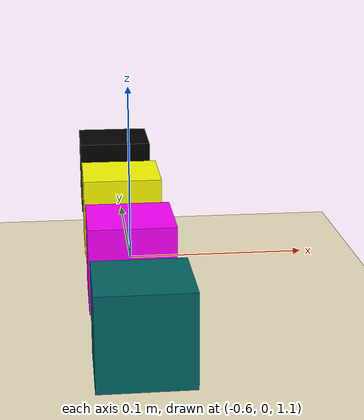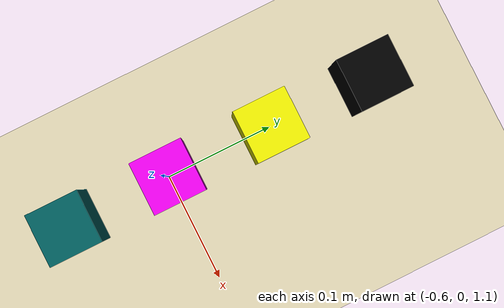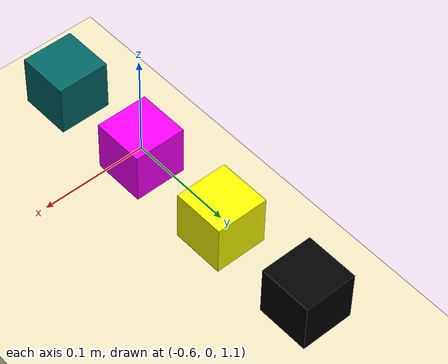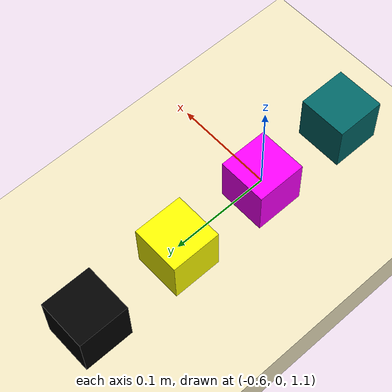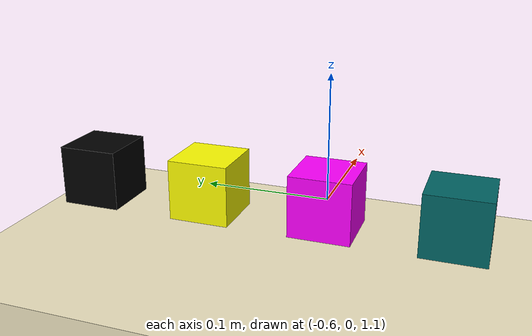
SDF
<sdf version="1.6">
  <world name="space_station_apriltag_world">
    <!-- Sim must be faster than the controller rate or there will be an error -->
    <physics name="sim_time" type="ignored">
      <max_step_size>0.005</max_step_size>
      <real_time_update_rate>0.005</real_time_update_rate>
      <real_time_factor>1.0</real_time_factor>
    </physics>
    <plugin
            filename="ignition-gazebo-physics-system"
            name="ignition::gazebo::systems::Physics">
    </plugin>
    <plugin
            filename="ignition-gazebo-user-commands-system"
            name="ignition::gazebo::systems::UserCommands">
    </plugin>
    <plugin
            filename="ignition-gazebo-scene-broadcaster-system"
            name="ignition::gazebo::systems::SceneBroadcaster">
    </plugin>
    <plugin
            filename="ignition-gazebo-contact-system"
            name="ignition::gazebo::systems::Contact">
    </plugin>
    <!-- FT Plugin -->
    <plugin
            filename="ignition-gazebo-forcetorque-system"
            name="ignition::gazebo::systems::ForceTorque">
    </plugin>

    <scene>
      <ambient>0.0 0.0 0.0 1.0</ambient>
      <shadows>0</shadows>
    </scene>

    <light type="directional" name="right-light">
      <cast_shadows>false</cast_shadows>
      <pose>0 0 100 0 0 0</pose>
      <diffuse>0.6 0.6 0.6 1</diffuse>
      <specular>0.2 0.2 0.2 1</specular>
      <attenuation>
        <range>1000</range>
        <constant>0.9</constant>
        <linear>0.01</linear>
        <quadratic>0.001</quadratic>
      </attenuation>
      <direction>-0.5 0.5 -1.0</direction>
    </light>
    <light type="directional" name="left-light">
      <cast_shadows>false</cast_shadows>
      <pose>0 0 100 0 0 0</pose>
      <diffuse>0.8 0.8 0.8 1</diffuse>
      <specular>0.2 0.2 0.2 1</specular>
      <attenuation>
        <range>1000</range>
        <constant>0.9</constant>
        <linear>0.01</linear>
        <quadratic>0.001</quadratic>
      </attenuation>
      <direction>-0.5 -0.5 -1.0</direction>
    </light>
    <light type="directional" name="bottom-light">
      <cast_shadows>false</cast_shadows>
      <pose>0 0 -100 0 0 0</pose>
      <diffuse>0.5 0.5 0.5 1</diffuse>
      <specular>0.5 0.5 0.5 1</specular>
      <attenuation>
        <range>1000</range>
        <constant>0.9</constant>
        <linear>0.01</linear>
        <quadratic>0.001</quadratic>
      </attenuation>
      <direction>0.0 0.0 1.0</direction>
    </light>
    <light type="directional" name="front-right-light">
      <cast_shadows>false</cast_shadows>
      <pose>100 75 1.5 0 0 0</pose>
      <diffuse>0.4 0.4 0.4 1</diffuse>
      <specular>0.4 0.4 0.4 1</specular>
      <attenuation>
        <range>1000</range>
        <constant>0.9</constant>
        <linear>0.01</linear>
        <quadratic>0.001</quadratic>
      </attenuation>
      <direction>-1.0 -0.75 0.0</direction>
    </light>
    <light type="directional" name="front-left-light">
      <cast_shadows>false</cast_shadows>
      <pose>100 -75 1.5 0 0 0</pose>
      <diffuse>0.4 0.4 0.4</diffuse>
      <specular>0.4 0.4 0.4 1</specular>
      <attenuation>
        <range>1000</range>
        <constant>0.9</constant>
        <linear>0.01</linear>
        <quadratic>0.001</quadratic>
      </attenuation>
      <direction>-1.0 0.75 0.0</direction>
    </light>

    <model name="ground_plane">
      <static>true</static>
      <link name="link">
        <collision name="collision">
          <geometry>
            <plane>
              <normal>0 0 1</normal>
              <size>100 100</size>
            </plane>
          </geometry>
        </collision>
        <visual name="visual">
          <geometry>
            <plane>
              <normal>0 0 1</normal>
              <size>100 100</size>
            </plane>
          </geometry>
          <material>
            <ambient>0.8 0.8 0.8 1</ambient>
            <diffuse>0.8 0.8 0.8 1</diffuse>
            <specular>0.8 0.8 0.8 1</specular>
          </material>
        </visual>
      </link>
    </model>

    <!-- Table -->
    <model name="table">
      <static>true</static>
      <pose>0 0 1 0 0 0</pose>
      <link name="table_link">
        <collision name="box_collision">
          <geometry>
            <box>
              <size>1.5 1.0 0.05</size>
            </box>
          </geometry>
          <surface>
            <friction>
              <ode>
                <mu1>0.6</mu1>
                <mu2>0.6</mu2>
              </ode>
            </friction>
            <contact>
              <ode>
                <kp>1e+5</kp>
                <kd>1</kd>
                <soft_cfm>0</soft_cfm>
                <soft_erp>0.2</soft_erp>
                <minDepth>0.001</minDepth>
              </ode>
            </contact>
          </surface>
        </collision>

        <visual name="table_visual">
          <geometry>
            <box>
              <size>1.5 1.0 0.05</size>
            </box>
          </geometry>
          <material>
            <ambient>0.93 0.89 0.75 1.0</ambient>
            <emissive>0.93 0.89 0.75 1.0</emissive>
          </material>
        </visual>
      </link>
    </model>

    <!-- Pickable boxes -->
    <model name="box_cyan">
      <pose>-0.6 -0.1 1.1 0 0 0</pose>
      <link name="box_link">
        <inertial>
          <inertia>
            <ixx>0.0001875</ixx>
            <ixy>0</ixy>
            <ixz>0</ixz>
            <iyy>0.0001875</iyy>
            <iyz>0</iyz>
            <izz>0.0001875</izz>
          </inertia>
          <mass>0.2</mass>
        </inertial>
        <collision name="box_collision">
          <geometry>
            <box>
              <size>0.05 0.05 0.05</size>
            </box>
          </geometry>
          <surface>
            <friction>
              <ode>
                <mu1>1000000.0</mu1>
                <mu2>1000000.0</mu2>
              </ode>
            </friction>
            <contact>
              <ode>
                <kp>1e+5</kp>
                <kd>1</kd>
                <soft_cfm>0</soft_cfm>
                <soft_erp>0.2</soft_erp>
                <minDepth>0.002</minDepth>
                <maxVel>0</maxVel>
              </ode>
            </contact>
          </surface>
        </collision>

        <visual name="box_visual">
          <geometry>
            <box>
              <size>0.05 0.05 0.05</size>
            </box>
          </geometry>
          <material>
            <ambient>0 0.39215686274 0.39215686274 1</ambient>
            <diffuse>0 0.39215686274 0.39215686274 1</diffuse>
            <specular>0 0.39215686274 0.39215686274 1</specular>
          </material>
        </visual>
      </link>
    </model>

    <model name="box_magenta">
      <pose>-0.6 0.0 1.1 0 0 0</pose>
      <link name="box_link">
        <inertial>
          <inertia>
            <ixx>0.0001875</ixx>
            <ixy>0</ixy>
            <ixz>0</ixz>
            <iyy>0.0001875</iyy>
            <iyz>0</iyz>
            <izz>0.0001875</izz>
          </inertia>
          <mass>0.2</mass>
        </inertial>
        <collision name="box_collision">
          <geometry>
            <box>
              <size>0.05 0.05 0.05</size>
            </box>
          </geometry>
          <surface>
            <friction>
              <ode>
                <mu1>1000000.0</mu1>
                <mu2>1000000.0</mu2>
              </ode>
            </friction>
            <contact>
              <ode>
                <kp>1e+5</kp>
                <kd>1</kd>
                <soft_cfm>0</soft_cfm>
                <soft_erp>0.2</soft_erp>
                <minDepth>0.002</minDepth>
                <maxVel>0</maxVel>
              </ode>
            </contact>
          </surface>
        </collision>

        <visual name="box_visual">
          <geometry>
            <box>
              <size>0.05 0.05 0.05</size>
            </box>
          </geometry>
          <material>
            <ambient>1 0 1 1</ambient>
            <diffuse>1 0 1 1</diffuse>
            <specular>1 0 1 1</specular>
          </material>
        </visual>
      </link>
    </model>

    <model name="box_yellow">
      <pose>-0.6 0.1 1.1 0 0 0</pose>
      <link name="box_link">
        <inertial>
          <inertia>
            <ixx>0.0001875</ixx>
            <ixy>0</ixy>
            <ixz>0</ixz>
            <iyy>0.0001875</iyy>
            <iyz>0</iyz>
            <izz>0.0001875</izz>
          </inertia>
          <mass>0.2</mass>
        </inertial>
        <collision name="box_collision">
          <geometry>
            <box>
              <size>0.05 0.05 0.05</size>
            </box>
          </geometry>
          <surface>
            <friction>
              <ode>
                <mu1>1000000.0</mu1>
                <mu2>1000000.0</mu2>
              </ode>
            </friction>
            <contact>
              <ode>
                <kp>1e+5</kp>
                <kd>1</kd>
                <soft_cfm>0</soft_cfm>
                <soft_erp>0.2</soft_erp>
                <minDepth>0.002</minDepth>
                <maxVel>0</maxVel>
              </ode>
            </contact>
          </surface>
        </collision>

        <visual name="box_visual">
          <geometry>
            <box>
              <size>0.05 0.05 0.05</size>
            </box>
          </geometry>
          <material>
            <ambient>1 1 0 1</ambient>
            <diffuse>1 1 0 1</diffuse>
            <specular>1 1 0 1</specular>
          </material>
        </visual>
      </link>
    </model>

    <model name="box_black">
      <pose>-0.6 0.2 1.1 0 0 0</pose>
      <link name="box_link">
        <inertial>
          <inertia>
            <ixx>0.0001875</ixx>
            <ixy>0</ixy>
            <ixz>0</ixz>
            <iyy>0.0001875</iyy>
            <iyz>0</iyz>
            <izz>0.0001875</izz>
          </inertia>
          <mass>0.2</mass>
        </inertial>
        <collision name="box_collision">
          <geometry>
            <box>
              <size>0.05 0.05 0.05</size>
            </box>
          </geometry>
          <surface>
            <friction>
              <ode>
                <mu1>1000000.0</mu1>
                <mu2>1000000.0</mu2>
              </ode>
            </friction>
            <contact>
              <ode>
                <kp>1e+5</kp>
                <kd>1</kd>
                <soft_cfm>0</soft_cfm>
                <soft_erp>0.2</soft_erp>
                <minDepth>0.002</minDepth>
                <maxVel>0</maxVel>
              </ode>
            </contact>
          </surface>
        </collision>

        <visual name="box_visual">
          <geometry>
            <box>
              <size>0.05 0.05 0.05</size>
            </box>
          </geometry>
          <material>
            <ambient>0 0 0 1</ambient>
            <diffuse>0 0 0 1</diffuse>
            <specular>0 0 0 1</specular>
          </material>
        </visual>
      </link>
    </model>

  </world>
</sdf>
